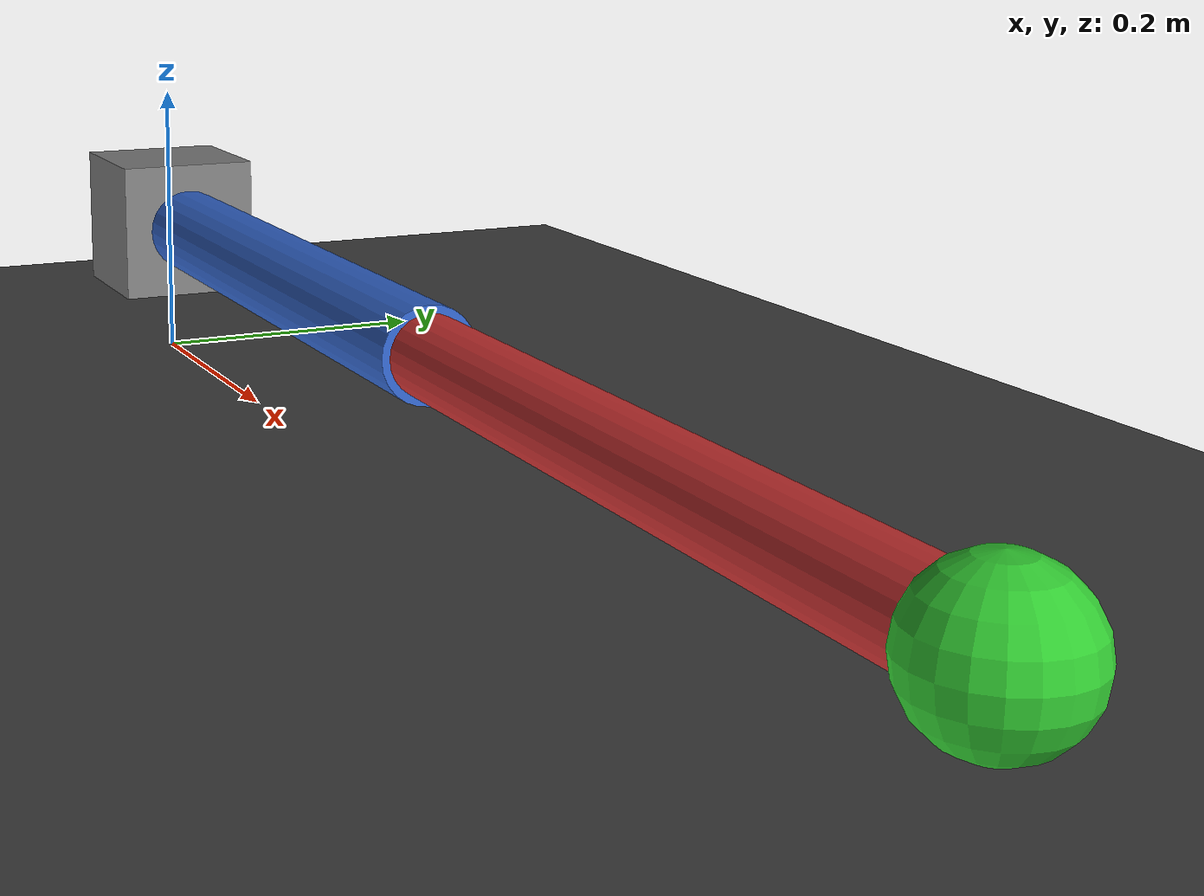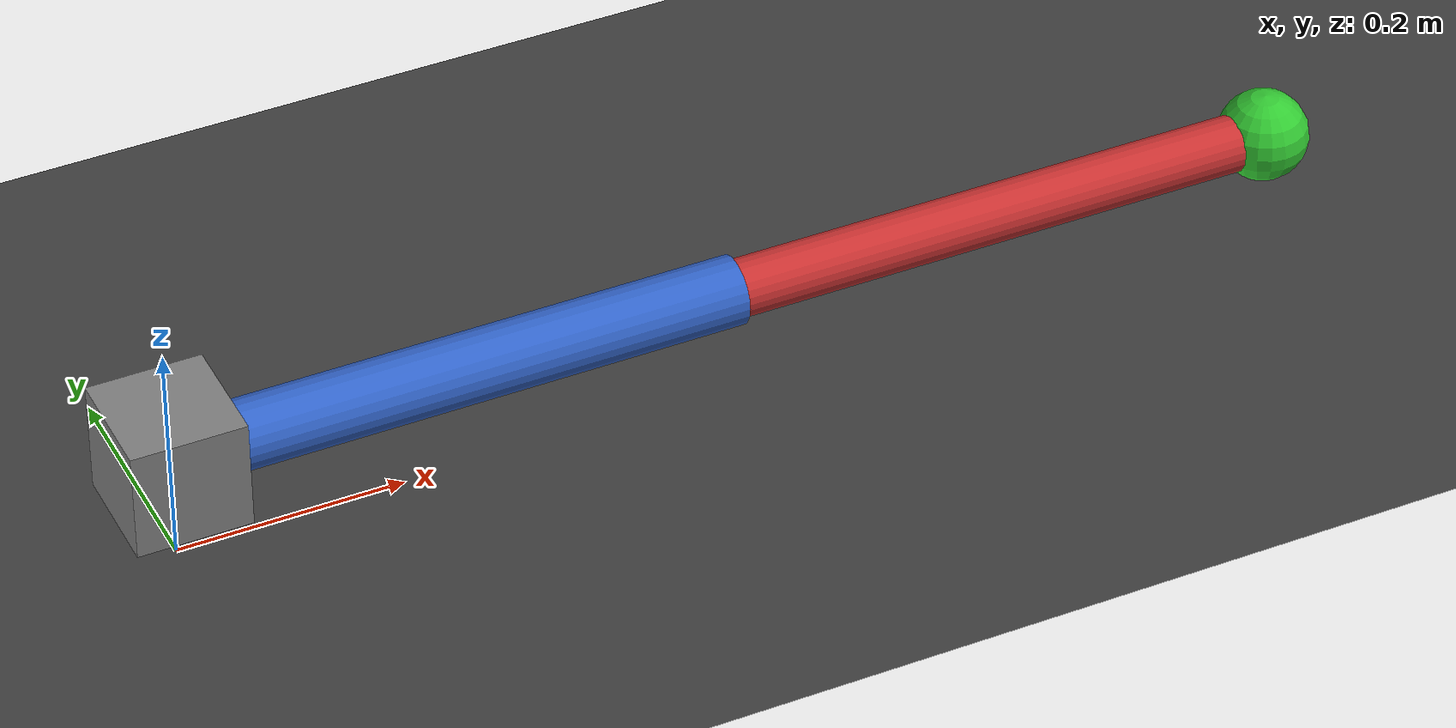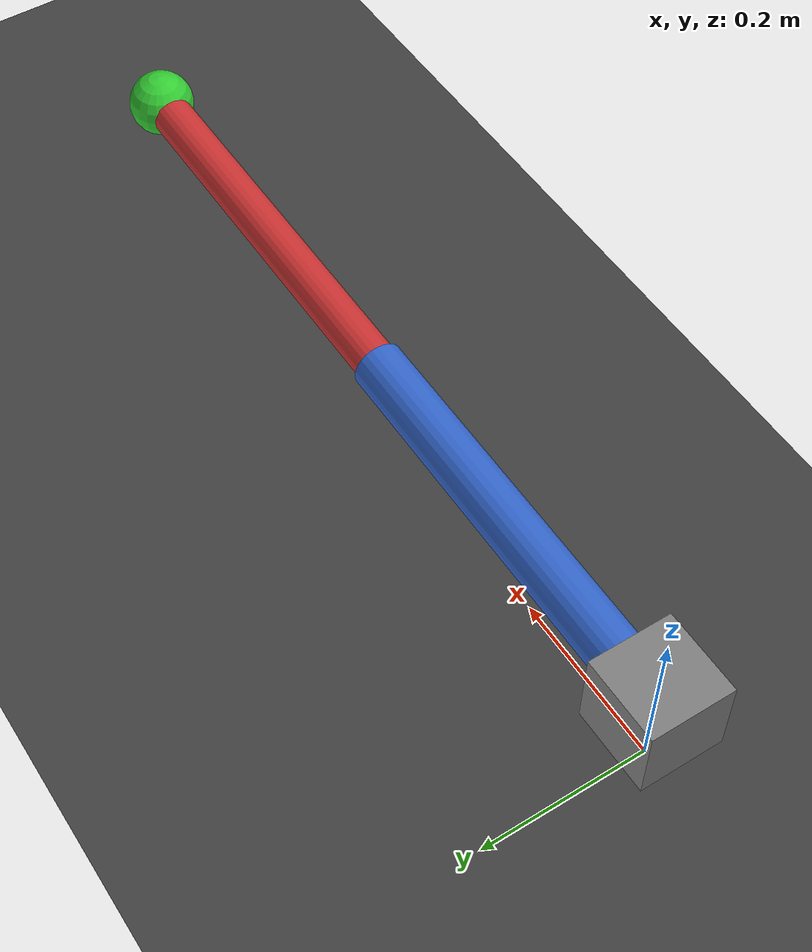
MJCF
<!--
Copyright 2025 Zordi, Inc. All rights reserved.

MuJoCo model for 2-DOF planar robot arm (horizontal)
-->
<mujoco model="cartpole_2dof">
  <compiler angle="radian" meshdir="." autolimits="true"/>

  <option timestep="0.001" gravity="0 0 0">
    <flag contact="disable"/>
  </option>

  <visual>
    <global offwidth="1920" offheight="1080"/>
    <quality shadowsize="4096"/>
    <map force="0.1" fogstart="3" fogend="5"/>
  </visual>

  <asset>
    <texture name="grid" type="2d" builtin="checker" width="512" height="512" rgb1="0.2 0.2 0.2" rgb2="0.3 0.3 0.3"/>
    <material name="grid" texture="grid" texrepeat="1 1" texuniform="true" reflectance="0.2"/>
    <material name="blue" rgba="0.2 0.4 0.8 1"/>
    <material name="red" rgba="0.8 0.2 0.2 1"/>
    <material name="green" rgba="0.2 0.8 0.2 1"/>
  </asset>

  <worldbody>
    <!-- Ground plane -->
    <geom name="floor" type="plane" size="2 2 0.1" material="grid" condim="3"/>

    <!-- Lighting -->
    <light directional="true" diffuse="0.8 0.8 0.8" specular="0.2 0.2 0.2" pos="0 0 5" dir="0 0 -1"/>
    <light directional="true" diffuse="0.4 0.4 0.4" specular="0.1 0.1 0.1" pos="0 0 4" dir="0 0 -1"/>

    <!-- Base (fixed to world, raised above ground) -->
    <body name="base_link" pos="0 0 0.1">
      <geom name="base" type="box" size="0.05 0.05 0.05" rgba="0.5 0.5 0.5 1"/>

      <!-- Link 1 (extends horizontally in +X direction) -->
      <body name="link1" pos="0 0 0">
        <joint name="joint1" axis="0 0 1" limited="true" range="-3.14 3.14" damping="0.1"/>
        <geom name="link1" type="cylinder" size="0.03 0.25" pos="0.25 0 0" quat="0.707 0 0.707 0" material="blue"/>
        <inertial pos="0.25 0 0" mass="1.0" diaginertia="0.001 0.021 0.021"/>

        <!-- Link 2 (extends horizontally in +X direction from end of link1) -->
        <body name="link2" pos="0.5 0 0">
          <joint name="joint2" axis="0 0 1" limited="true" range="-3.14 3.14" damping="0.1"/>
          <geom name="link2" type="cylinder" size="0.025 0.25" pos="0.25 0 0" quat="0.707 0 0.707 0" material="red"/>
          <inertial pos="0.25 0 0" mass="0.5" diaginertia="0.0005 0.011 0.011"/>

          <!-- End-effector -->
          <body name="ee_link" pos="0.5 0 0">
            <geom name="ee" type="sphere" size="0.04" material="green"/>
            <inertial pos="0 0 0" mass="0.01" diaginertia="0.00001 0.00001 0.00001"/>
            <!-- Site for visualization and tracking -->
            <site name="ee_site" pos="0 0 0" size="0.01" rgba="1 1 0 1"/>
          </body>
        </body>
      </body>
    </body>
  </worldbody>

  <actuator>
    <!-- MIT mode actuators for joint1 (same pattern as test_1dof_gravity.xml) -->
    <!-- Position actuator: kp=100, kv=0 -->
    <position name="act_pos_joint1" joint="joint1"
              kp="100.0" kv="0.0"
              ctrlrange="-3.14 3.14" forcerange="-50 50"/>

    <!-- Velocity actuator: kv=10 (auto-neutralizes when ctrl=qd) -->
    <velocity name="act_vel_joint1" joint="joint1"
              kv="10.0"
              ctrlrange="-10 10" forcerange="-50 50"/>

    <!-- Torque actuator: Direct force control -->
    <motor name="act_tau_joint1" joint="joint1"
           ctrlrange="-50 50" forcerange="-50 50"/>

    <!-- MIT mode actuators for joint2 (same pattern as test_1dof_gravity.xml) -->
    <!-- Position actuator: kp=50, kv=0 -->
    <position name="act_pos_joint2" joint="joint2"
              kp="50.0" kv="0.0"
              ctrlrange="-3.14 3.14" forcerange="-25 25"/>

    <!-- Velocity actuator: kv=5 (auto-neutralizes when ctrl=qd) -->
    <velocity name="act_vel_joint2" joint="joint2"
              kv="5.0"
              ctrlrange="-10 10" forcerange="-25 25"/>

    <!-- Torque actuator: Direct force control -->
    <motor name="act_tau_joint2" joint="joint2"
           ctrlrange="-25 25" forcerange="-25 25"/>
  </actuator>

  <keyframe>
    <key name="home" qpos="0.3 -0.2" qvel="0 0"/>
    <key name="bent" qpos="0.5 -0.5" qvel="0 0"/>
    <key name="straight" qpos="0 0" qvel="0 0"/>
    <key name="right" qpos="1.57 0" qvel="0 0"/>
    <key name="left" qpos="-1.57 0" qvel="0 0"/>
  </keyframe>
</mujoco>
